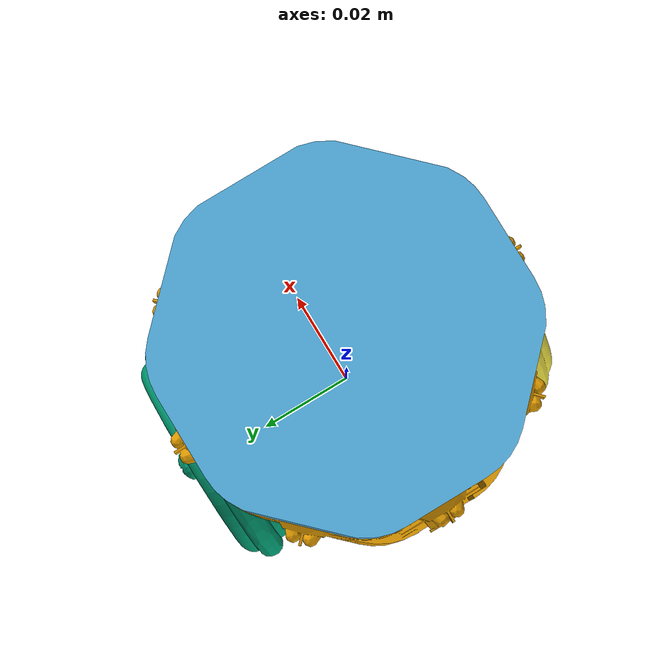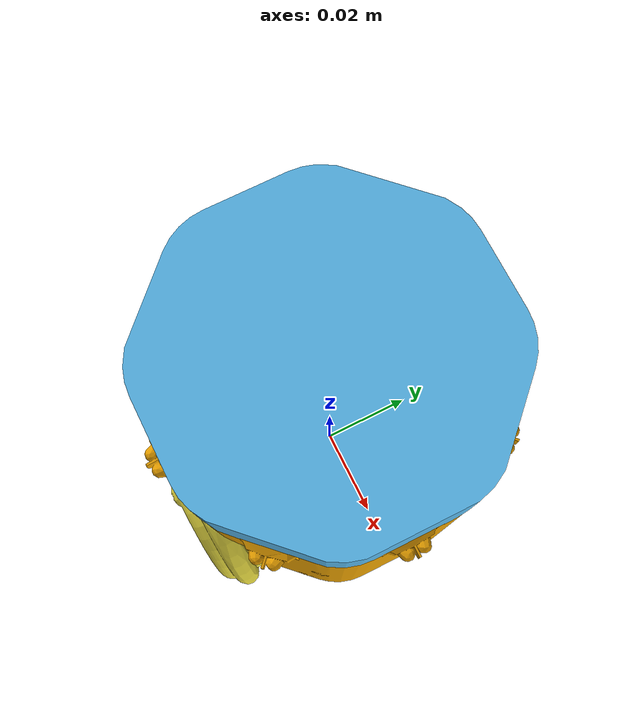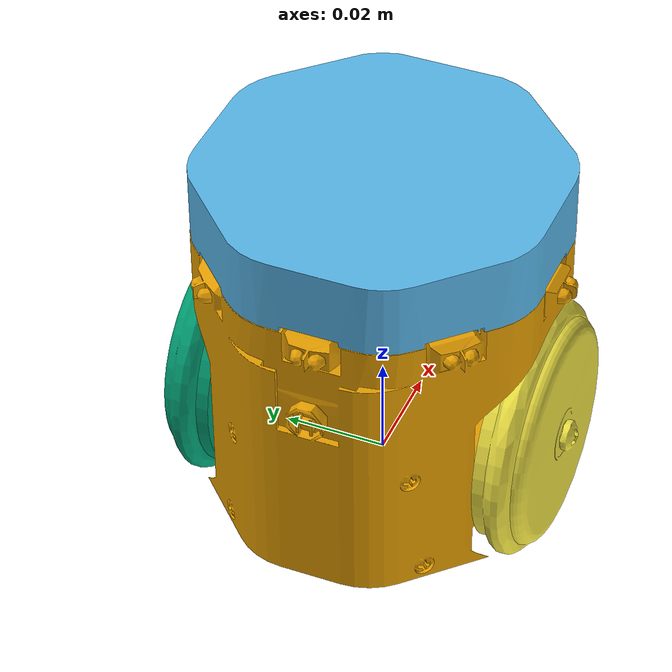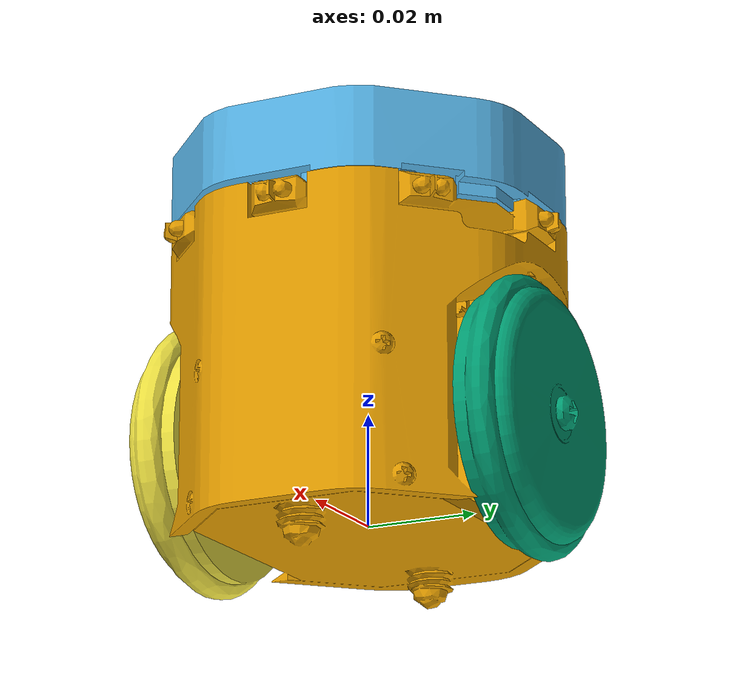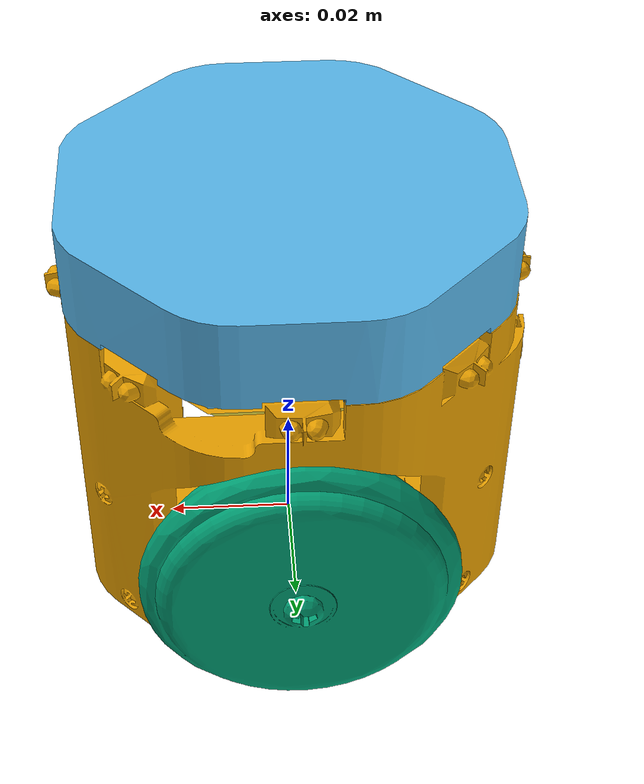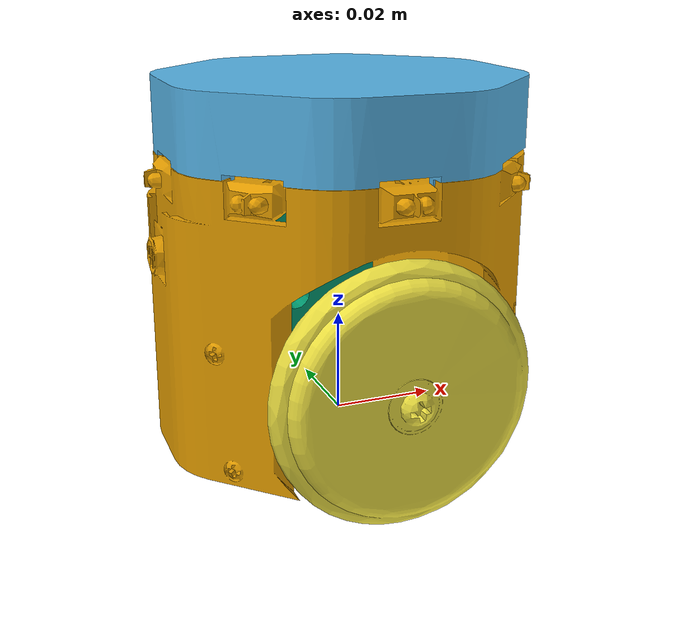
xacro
<?xml version="1.0"?>
<robot xmlns:xacro="http://www.ros.org/wiki/xacro" name="hero_0">
  <!-- Properties  -->
  <xacro:include filename="$(find hero_description)/urdf/common.xacro" />
  <!-- Initiate HeRo model and controller -->
  <xacro:include filename="$(find hero_description)/urdf/hero.xacro" />
  <xacro:include filename="$(find hero_description)/urdf/hero.gazebo.xacro" />
  <xacro:include filename="$(find hero_description)/urdf/hero.transmissions.xacro" />
  <!-- Initiate Laser and IMU sensors -->

</robot>

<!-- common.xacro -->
<robot xmlns:xacro="http://www.ros.org/wiki/xacro">

  <!-- Some properties of HERO -->
  <xacro:property name="PI" value="3.1415926535897931" />
  <xacro:property name="wheel_separation" value="0.06460" />
  <xacro:property name="wheel_diameter" value="0.050" />

  <xacro:macro name="cylinder_inertia" params="m r h">
    <inertia ixx="${m*(3*r*r+h*h)/12}" ixy = "0" ixz = "0" iyy="${m*(3*r*r+h*h)/12}" iyz = "0" izz="${m*r*r/2}" />
  </xacro:macro>

  <xacro:macro name="box_inertia" params="m x y z">
    <inertia ixx="${m*(y*y+z*z)/12}" ixy = "0" ixz = "0" iyy="${m*(x*x+z*z)/12}" iyz = "0" izz="${m*(x*x+z*z)/12}" />
  </xacro:macro>

</robot>

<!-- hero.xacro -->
<robot xmlns:xacro="http://www.ros.org/wiki/xacro">

  <!-- Here was the base link definitions -->
  <link name="base_link">
    <visual>
      <origin xyz="0 0 0" rpy="0 0 ${pi/2}" />
      <geometry>
        <mesh filename="package://hero_description/meshes/base_link.obj" scale="1 1 1"/>
      </geometry>
    </visual>
    <collision>
      <origin xyz="0 0 0.0121" rpy="0 0 ${pi/2}" />
      <geometry>
        <cylinder length="0.042" radius="0.037"/>
      </geometry>
    </collision>
    <inertial>
      <mass value="0.090" />
      <origin xyz="0 0.0002 0" rpy="${pi/2} 0 0"/>
      <xacro:cylinder_inertia m="0.090" r="0.035" h="0.065"/>
    </inertial>
  </link>
  <gazebo reference="base_link">
    <gravity>1</gravity>
    <mu1 value="0.01"/>
    <mu2 value="0.01"/>
    <maxContacts>4</maxContacts>
    <selfCollide>1</selfCollide>
  </gazebo>

  <!--  Here was the hat joint and link -->
  <joint name="hat_joint" type="fixed">
    <origin xyz="-0.00245 -0.00216 0.06027" rpy="0 0 0" />
    <parent link="base_link"/>
    <child link="hat_link"/>
  </joint>
  <link name="hat_link">
    <visual>
      <origin xyz="0 0 0" rpy="0 0 0" />
      <geometry>
        <mesh filename="package://hero_description/meshes/hat.obj" scale="1 1 1"/>
      </geometry>
    </visual>
    <collision>
      <origin xyz="0 0 0" rpy="0 0 0" />
      <geometry>
        <mesh filename="package://hero_description/meshes/hat.obj" scale="1 1 1"/>
      </geometry>
    </collision>
    <inertial>
      <mass value="0.010" />
      <origin xyz="0 0 0" rpy="0 0 0"/>
      <xacro:cylinder_inertia m="0.010" r="0.035" h="0.02"/>
    </inertial>
  </link>
  <gazebo reference="hat_link">
    <gravity>1</gravity>
    <maxVel value="0.10"/>
    <maxContacts>0</maxContacts>
    <selfCollide>0</selfCollide>
  </gazebo>

  <!--  Here was the left wheel joint and link -->
  <joint name="left_wheel_joint" type="continuous">
    <parent link="base_link"/>
    <child link="left_wheel_link"/>
    <origin xyz="0.0 ${wheel_separation/2} 0.01548" rpy="0 0 0" />
    <axis xyz="0 1 0" />
    <limit effort="0.1" velocity="0.3"/>
    <dynamics damping="0.0001" friction="0.0" />
  </joint>
  <link name="left_wheel_link">
    <visual>
      <origin xyz="0 0 0.0" rpy="0 0 0" />
      <geometry>
        <mesh filename="package://hero_description/meshes/wheel.obj" scale="1 1 1"/>
      </geometry>
    </visual>
    <collision>
      <origin xyz="0 0 0.0" rpy="${PI/2} 0 0" />
      <geometry>
        <cylinder length="0.008" radius="${wheel_diameter/2.0}"/>
      </geometry>
    </collision>
    <inertial>
      <mass value="0.020" />
      <origin xyz="0 0 0" rpy="${PI/2} 0 0"/>
      <xacro:cylinder_inertia m="0.010" h="0.008" r="${wheel_diameter/2.0}"/>
    </inertial>
  </link>
  <gazebo reference="left_wheel_link">
    <mu1 value="1.0"/>
    <mu2 value="1.0"/>
    <gravity>1</gravity>
    <maxContacts>4</maxContacts>
    <selfCollide>0</selfCollide>
  </gazebo>

  <!--  Here was the right wheel joint and link -->
  <joint name="right_wheel_joint" type="continuous">
    <axis xyz="0 1 0" />
    <limit effort="0.1" velocity="0.3"/>
    <dynamics damping="0.0001" friction="0" />
    <origin xyz="0.0 ${-wheel_separation/2} 0.01548" rpy="0 0 0" />
    <parent link="base_link"/>
    <child link="right_wheel_link"/>
  </joint>
  <link name="right_wheel_link">
    <visual>
      <origin xyz="0 0 0.0" rpy="${-PI} 0 0" />
      <geometry>
        <mesh filename="package://hero_description/meshes/wheel.obj" scale="1 1 1"/>
      </geometry>
    </visual>
    <collision>
      <origin xyz="0 0 0.0" rpy="${-PI/2} 0 0" />
      <geometry>
        <cylinder length="0.008" radius="${wheel_diameter/2.0}"/>
      </geometry>
    </collision>
    <inertial>
      <mass value="0.020" />
      <origin xyz="0 0 0" rpy="${-PI/2} 0 0"/>
      <xacro:cylinder_inertia m="0.010" h="0.008" r="${wheel_diameter/2.0}"/>
    </inertial>
  </link>
  <gazebo reference="right_wheel_link">
    <mu1 value="1.0"/>
    <mu2 value="1.0"/>
    <gravity>1</gravity>
    <maxContacts>4</maxContacts>
    <selfCollide>0</selfCollide>

  </gazebo>

</robot>
